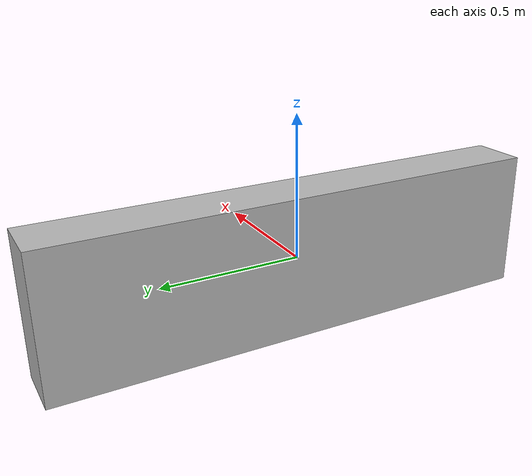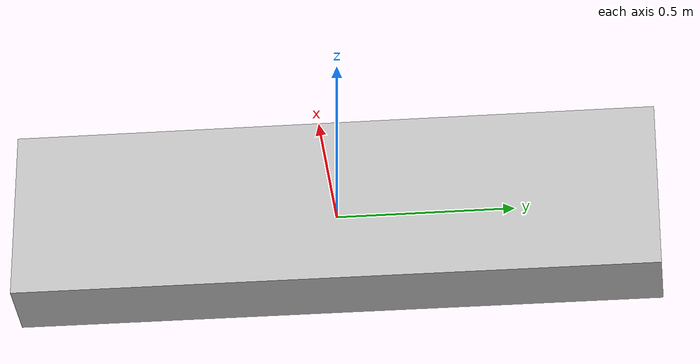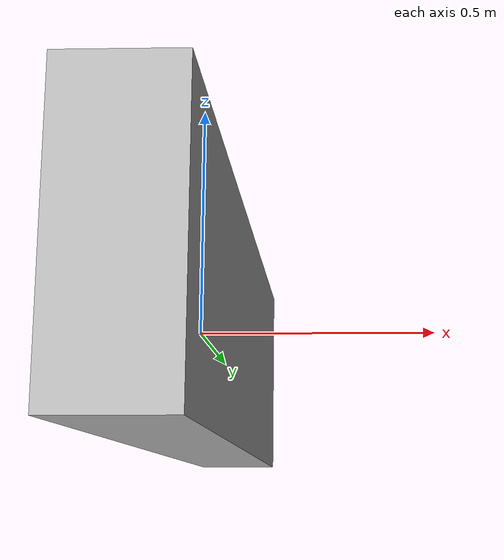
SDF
<?xml version="1.0"?>
<sdf version="1.9">
  <model name="human">

    <static>true</static>

    <link name="body">

      <!-- Visual -->

      <visual name="body_visual">
        <geometry>
          <mesh>
            <uri>model://human/meshes/human.obj</uri>
          </mesh>
        </geometry>
      </visual>

      <!-- Collision -->
      <collision name="body_collision">
        <geometry>
          <cylinder>
            <radius>0.20</radius>
            <length>1.80</length>
          </cylinder>
        </geometry>
      </collision>

    </link>

  </model>
</sdf>
